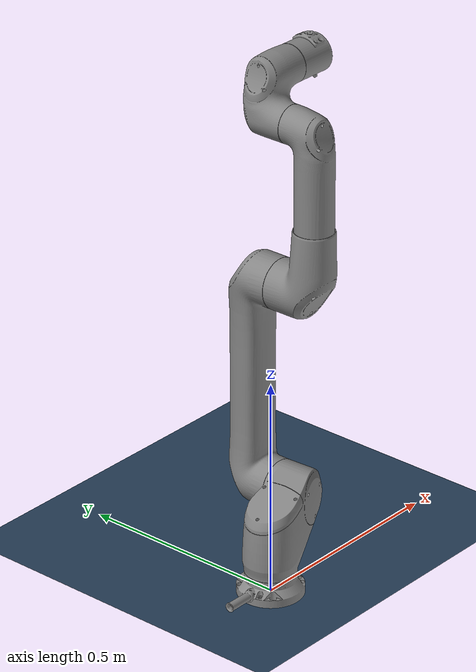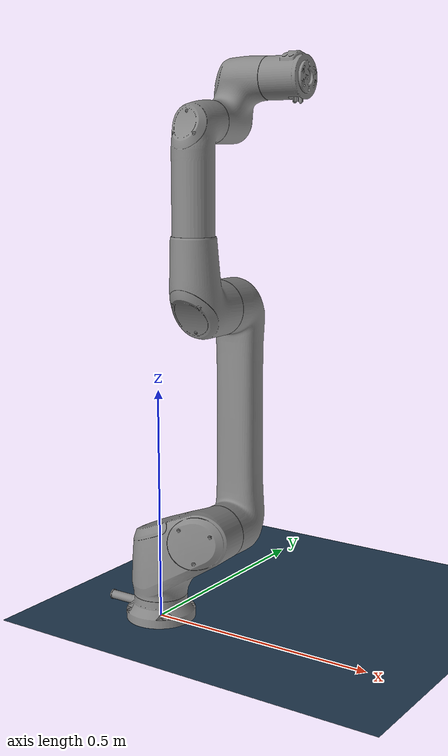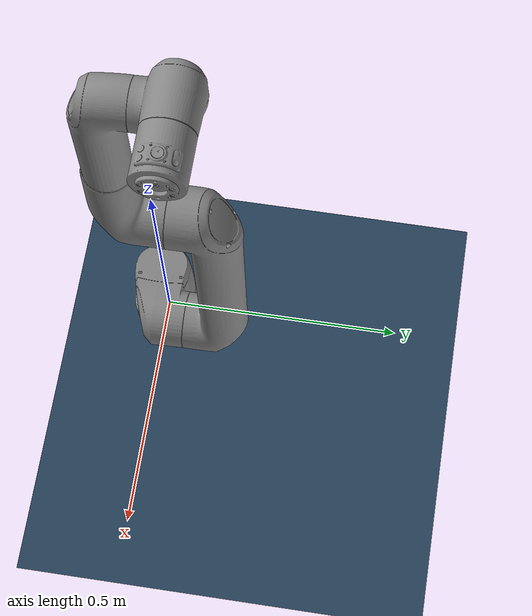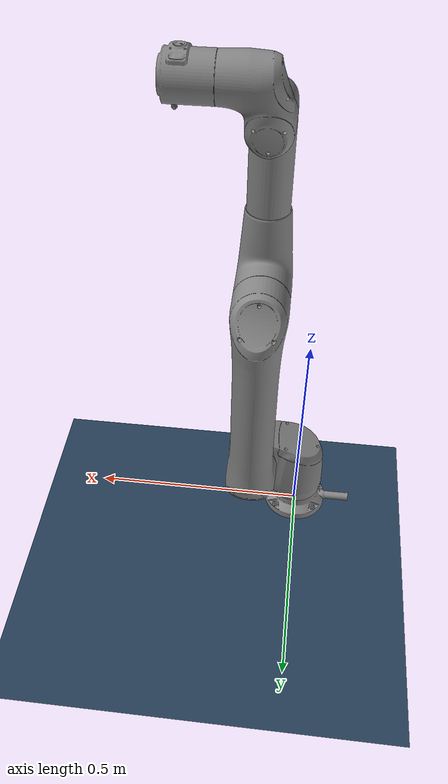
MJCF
<mujoco model="link6 scene">
  <include file="link6.xml"/>

  <statistic center="0.3 0 0.45" extent="0.8" meansize="0.05"/>

  <visual>
    <headlight diffuse="0.6 0.6 0.6" ambient="0.1 0.1 0.1" specular="0 0 0"/>
    <rgba haze="0.15 0.25 0.35 1"/>
    <global azimuth="120" elevation="-20"/>
  </visual>

  <asset>
    <texture type="skybox" builtin="gradient" rgb1="0.3 0.5 0.7" rgb2="0 0 0" width="512" height="3072"/>
    <texture type="2d" name="groundplane" builtin="checker" mark="edge" rgb1="0.2 0.3 0.4" rgb2="0.1 0.2 0.3"
      markrgb="0.8 0.8 0.8" width="300" height="300"/>
    <material name="groundplane" texture="groundplane" texuniform="true" texrepeat="5 5" reflectance="0.2"/>
  </asset>

  <worldbody>
    <light pos="0 0 1.5" directional="true"/>
    <geom name="floor" size="0 0 0.05" type="plane" material="groundplane"/>
  </worldbody>
</mujoco>

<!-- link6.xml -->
<mujoco model="link6_nominal">
  <compiler angle="radian" meshdir="assets/" balanceinertia="true"/>
  <option integrator="implicitfast" timestep="0.002"/>

  <default>
    <default class="visual">
      <geom type="mesh" contype="0" conaffinity="0" group="2" rgba="0.529412 0.529412 0.529412 1"/>
    </default>

    <default class="collision">
      <geom group="3" contype="1" conaffinity="1" solimp="0.95 0.99 0.003" solref="-400 -80"/>
    </default>

    <default class="big_joint">
      <joint damping="3.0" armature="0.030" frictionloss="0.06"/>
    </default>
    <default class="mid_joint">
      <joint damping="2.2" armature="0.020" frictionloss="0.05"/>
    </default>
    <default class="wrist_joint">
      <joint damping="0.6" armature="0.006" frictionloss="0.03"/>
    </default>

    <default class="large_actuator">
      <position kp="6000" kv="230" forcerange="-300 300"/>
    </default>
    <default class="small_actuator">
      <position kp="700" kv="45" forcerange="-100 100"/>
    </default>

    <site size="0.005" rgba="0.5 0.5 0.5 0.8" group="4"/>
  </default>

  <asset>
    <mesh name="base_link" file="base_link.stl"/>
    <mesh name="shoulder_link" file="shoulder_link.stl"/>
    <mesh name="arm_link" file="arm_link.stl"/>
    <mesh name="forearm_link" file="forearm_link.stl"/>
    <mesh name="lower_wrist_link" file="lower_wrist_link.stl"/>
    <mesh name="upper_wrist_link" file="upper_wrist_link.stl"/>
    <mesh name="wrist_interface_link" file="wrist_interface_link.stl"/>
  </asset>

  <worldbody>
    <body name="base_link">
      <inertial pos="-0.00721418 -0.00010978 0.03709101" quat="0.99827321 -0.00279093 0.05866908 -0.00086296"
        mass="1.86878181" diaginertia="0.00330895 0.00464688 0.00542015"/>
      <geom class="visual" mesh="base_link"/>
      <geom class="collision" type="sphere" size="0.1"/>
      <body name="shoulder_link" pos="0 0 0.053" quat="0 1 0 0">
        <inertial pos="0.03930119 -0.00705889 -0.08462154" quat="0.42175869 0.83491972 -0.14162376 0.32399287"
          mass="4.82569870" diaginertia="0.01126288 0.02720213 0.03303714"/>
        <joint class="big_joint" name="joint_1" pos="0 0 0" axis="0 0 1" range="-6.283185307179586 6.283185307179586"/>
        <geom class="visual" mesh="shoulder_link"/>
        <geom class="collision" type="sphere" size="0.09" pos="0 0 -0.04"/>
        <geom class="collision" type="sphere" size="0.095" pos="0.06065737 -0.01 -0.08144986"/>
        <geom class="collision" type="sphere" size="0.09" pos="0 0 -0.11"/>
        <geom class="collision" type="sphere" size="0.095" pos="0.1078564 -0.02138667 -0.1392602"/>
        <geom class="collision" type="sphere" size="0.095" pos="0.04343076 -0.003456797 -0.1306261"/>

        <body name="arm_link" pos="0.11024 -0.069257 -0.1375" quat="0.707107 -0.707107 0 0">
          <inertial pos="0.00000253 0.18829586 -0.03988382" quat="0.47725827 0.52180831 0.47703171 0.52190169"
            mass="5.98601487" diaginertia="0.01564580 0.25482538 0.25899206"/>
          <joint class="mid_joint" name="joint_2" pos="0 0 0" axis="0 0 1" range="-6.283185307179586 6.283185307179586"/>
          <geom class="visual" mesh="arm_link"/>
          <geom class="collision" type="sphere" size="0.08" pos="0.0 0.0 -0.01524985"/>
          <geom class="collision" type="sphere" size="0.085" pos="0.0 0.003107564 -0.05411892"/>
          <geom class="collision" type="sphere" size="0.08" pos="0.0 0.04674223 -0.07957917"/>
          <geom class="collision" type="sphere" size="0.08" pos="0.0 0.1114492 -0.07957917"/>
          <geom class="collision" type="sphere" size="0.08" pos="0.0 0.179992 -0.07957917"/>
          <geom class="collision" type="sphere" size="0.08" pos="0.0 0.2487042 -0.07957917"/>
          <geom class="collision" type="sphere" size="0.08" pos="0.0 0.3173259 -0.07957917"/>
          <geom class="collision" type="sphere" size="0.08" pos="0.0 0.3835145 -0.07957917"/>
          <geom class="collision" type="sphere" size="0.08" pos="0.0 0.4415521 -0.07957917"/>
          <geom class="collision" type="sphere" size="0.085" pos="0.0 0.4824647 -0.05411892"/>
          <geom class="collision" type="sphere" size="0.08" pos="0.0 0.4848319 -0.01524985"/>

          <body name="forearm_link" pos="0 0.485 0" quat="0 -1 0 0">
            <inertial pos="0.00000464 -0.02451414 -0.02997969" quat="0.64665510 0.28632595 0.64737503 0.28418339"
              mass="3.41588342" diaginertia="0.00645749 0.01686302 0.01742044"/>
            <joint class="mid_joint" name="joint_3" pos="0 0 0" axis="0 0 1"
              range="-6.283185307179586 6.283185307179586"/>
            <geom class="visual" mesh="forearm_link"/>
            <geom class="collision" type="sphere" size="0.08" pos="0.0 0.0 -0.01478543"/>
            <geom class="collision" type="sphere" size="0.085" pos="0.0 -0.002774531 -0.05402248"/>
            <geom class="collision" type="sphere" size="0.08" pos="0.0 -0.02792384 -0.08310601"/>
            <geom class="collision" type="sphere" size="0.075" pos="0.0 -0.07494865 -0.09085903"/>
            <geom class="collision" type="sphere" size="0.075" pos="0.0 -0.1212274 -0.091767"/>

            <body name="lower_wrist_link" pos="0 -0.15216 -0.091704" quat="0.707107 -0.707107 0 0">
              <inertial pos="-0.00010793 -0.01056422 -0.08091102" quat="0.06015269 -0.70426339 0.04344890 -0.70605022"
                mass="2.08494922" diaginertia="0.00248256 0.02432336 0.02454290"/>
              <joint class="wrist_joint" name="joint_4" pos="0 0 0" axis="0 0 1"
                range="-6.283185307179586 6.283185307179586"/>
              <geom class="visual" mesh="lower_wrist_link"/>
              <geom class="collision" type="sphere" size="0.07" pos="0.0 0.0 -0.01025881"/>
              <geom class="collision" type="sphere" size="0.07" pos="0.0 0.0 -0.06014508"/>
              <geom class="collision" type="sphere" size="0.07" pos="0.0 0.0 -0.1106502"/>
              <geom class="collision" type="sphere" size="0.07" pos="0.0 0.0 -0.1607216"/>
              <geom class="collision" type="sphere" size="0.07" pos="0.0 -0.001607588 -0.2100781"/>
              <geom class="collision" type="sphere" size="0.07" pos="0.0 -0.03559661 -0.222183"/>

              <body name="upper_wrist_link" pos="0 -0.062957 -0.22275" quat="0.707107 -0.707107 0 0">
                <inertial pos="0.01243595 0.03284165 -0.04091434" quat="0.66759196 -0.03630621 -0.46678850 0.57888802"
                  mass="2.00757510" diaginertia="0.00278168 0.00607540 0.00903167"/>
                <joint class="wrist_joint" name="joint_5" pos="0 0 0" axis="0 0 1"
                  range="-6.283185307179586 6.283185307179586"/>
                <geom class="visual" mesh="upper_wrist_link"/>
                <geom class="collision" type="sphere" size="0.07" pos="0.0 0.0 -0.02579783"/>
                <geom class="collision" type="sphere" size="0.07" pos="0.0 0.0 -0.06192018"/>
                <geom class="collision" type="sphere" size="0.075" pos="0.00760242 0.03851649 -0.07210818"/>
                <geom class="collision" type="sphere" size="0.075" pos="0.01731829 0.07948508 -0.07309098"/>
                <geom class="collision" type="sphere" size="0.07" pos="0.06120646 0.0860149 -0.07708402"/>

                <body name="wrist_interface_link" pos="0.087028 0.086 -0.076922" quat="0.707107 0 -0.707107 0">
                  <inertial pos="0 0.00050624 -0.00388589" quat="0.66048695 0.25295379 0.65793755 -0.25863014"
                    mass="1.51926049" diaginertia="0.00139261 0.00390637 0.00390866"/>
                  <joint class="wrist_joint" name="joint_6" pos="0 0 0" axis="0 0 1"
                    range="-6.283185307179586 6.283185307179586"/>
                  <geom class="visual" mesh="wrist_interface_link"/>
                  <geom class="collision" type="sphere" size="0.07" pos="0.0 0.0 -0.02647703"/>
                  <geom class="collision" type="sphere" size="0.07" pos="0.0 0.0 -0.06063214"/>

                  <body name="end_effector_link" pos="0 0 -0.092" quat="0 1 0 0">
                    <site name="tool0" pos="0 0 0" quat="1 0 0 0"/>
                    <site name="pinch_site" pos="0 0 0" quat="1 0 0 0"/>
                  </body>

                </body>
              </body>
            </body>
          </body>
        </body>
      </body>
    </body>
  </worldbody>

  <actuator>
    <position class="large_actuator" name="joint_1" joint="joint_1" kp="10000" kv="210" forcerange="-3500 3500"
      timeconst="0.06" ctrlrange="-3.0543261909900767 3.0543261909900767"/>

    <position class="large_actuator" name="joint_2" joint="joint_2" kp="1600" kv="80" timeconst="0.06"
      forcerange="-300 300" ctrlrange="-2.792526803190927 1.5707963267948966"/>

    <position class="large_actuator" name="joint_3" joint="joint_3" kp="1400" kv="75" timeconst="0.05"
      forcerange="-280 280" ctrlrange="-1.0471975511965976 2.792526803190927"/>

    <position class="small_actuator" name="joint_4" joint="joint_4" kp="800" kv="50"
      ctrlrange="-3.0543261909900767 3.0543261909900767"/>

    <position class="small_actuator" name="joint_5" joint="joint_5" kp="700" kv="45"
      ctrlrange="-2.0943951023931953 2.0943951023931953"/>

    <position class="small_actuator" name="joint_6" joint="joint_6" kp="700" kv="45"
      ctrlrange="-3.0543261909900767 3.0543261909900767"/>
  </actuator>

  <keyframe>
    <key name="home" qpos="0 0.26179939 3.14159265 -2.26892803 0 0.95993109"
      ctrl="0 0.26179939 3.14159265 -2.26892803 0 0.95993109"/>
    <key name="retract" qpos="0 -0.34906585 3.14159265 -2.54818071 0 -0.87266463"
      ctrl="0 -0.34906585 3.14159265 -2.54818071 0 -0.87266463"/>
  </keyframe>
</mujoco>
